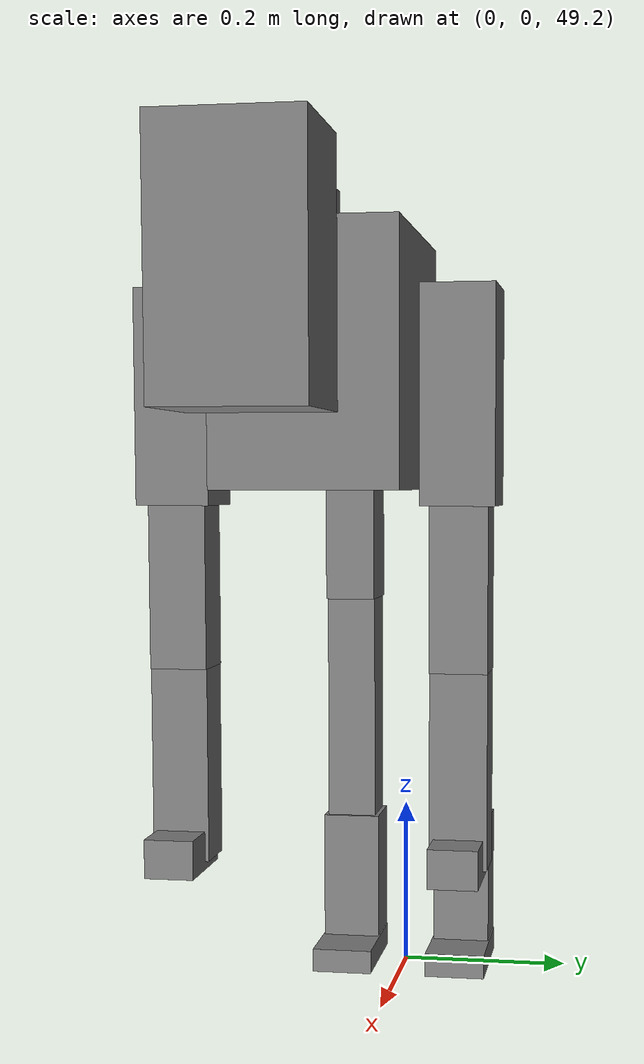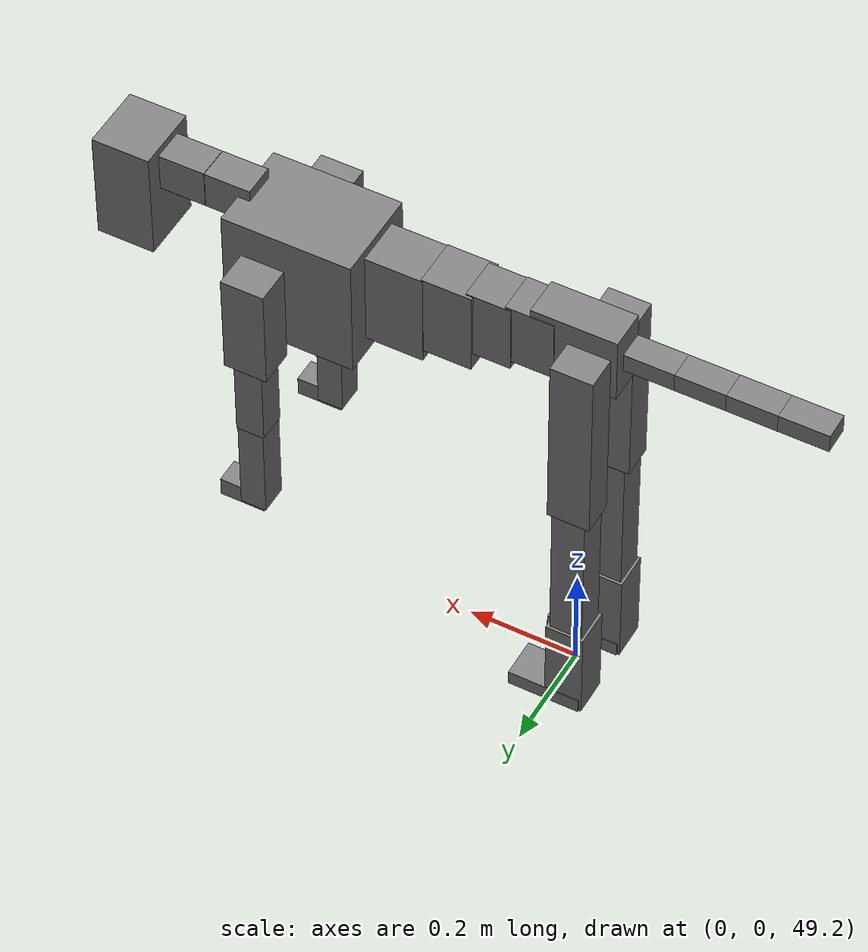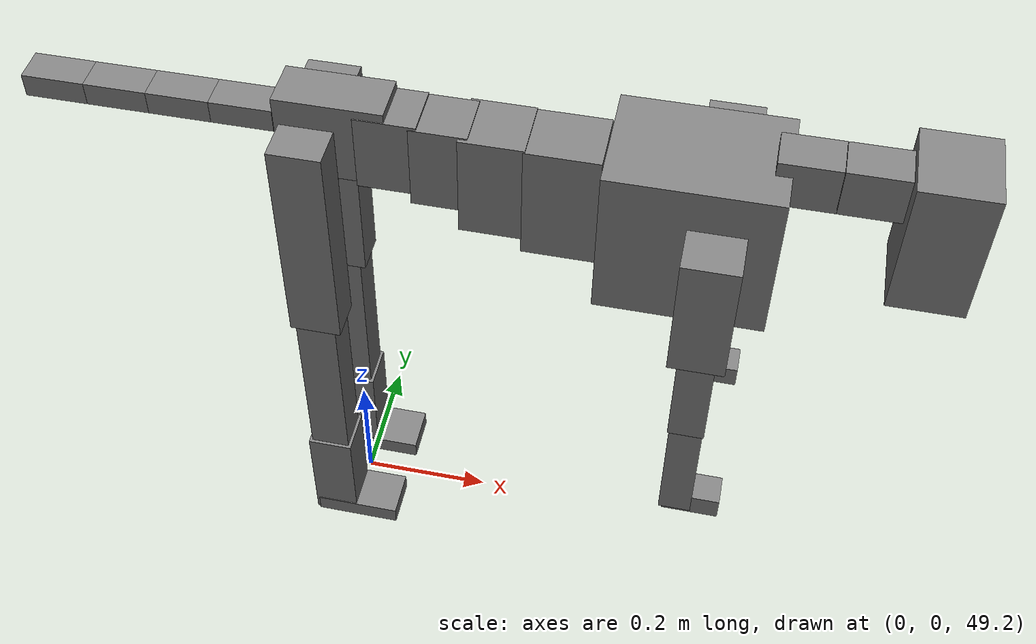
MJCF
<mujoco model="dog">

    <default>
        <joint armature="0.02" stiffness="1" damping="0.2" limited="true"/>
        <geom condim="3" friction="1 0.05 0.05" margin="0.01"/>
        <motor ctrllimited="true" ctrlrange="-1.0 1.0" forcelimited="true" gear="50"/>
    </default>

    <compiler inertiafromgeom="true" angle="radian"/>

    <option timestep="0.016" iterations="50" tolerance="1e-10" solver="Newton" jacobian="dense" cone="pyramidal"/>

    <size nconmax="20000" njmax="60000" nstack="5000000"/>
    <visual>
        <map force="0.1" zfar="30"/>
        <rgba haze="0.15 0.25 0.35 1"/>
        <quality shadowsize="2048"/>
        <global offwidth="800" offheight="800"/>
    </visual>

    <asset>
        <texture type="skybox" builtin="gradient" rgb1="0.3 0.5 0.7" rgb2="0 0 0" width="512" height="512"/>
        <texture name="texplane" type="2d" builtin="checker" rgb1=".2 .3 .4" rgb2=".1 0.15 0.2" width="512" height="512"
                 mark="cross" markrgb=".8 .8 .8"/>
        <texture name="texgeom" type="cube" builtin="flat" mark="cross" width="127" height="1278" rgb1="0.8 0.6 0.4"
                 rgb2="0.8 0.6 0.4" markrgb="1 1 1" random="0.01"/>

        <material name="matplane" reflectance="0.3" texture="texplane" texrepeat="1 1" texuniform="true"/>
        <material name="matgeom" texture="texgeom" texuniform="true" rgba="0.8 0.6 .4 1"/>
    </asset>

    <worldbody>
        <geom name="floor" pos="0 0 0" size="0 0 .25" type="plane" material="matplane" condim="3"/>

        <light directional="false" diffuse=".2 .2 .2" specular="0 0 0" pos="0 0 5" dir="0 0 -1" castshadow="false"/>
        <light mode="targetbodycom" target="torso" directional="false" diffuse=".8 .8 .8" specular="0.3 0.3 0.3"
               pos="0 0 4.0" dir="0 0 -1"/>

        <body name="root" pos="0 0 50">
            <freejoint name="root_1"/>
            <geom type="box" pos="0 0 -0.02" size="0.0774  0.0358  0.063" density="2030"/>

            <body name="spine1" pos="0.054 0 0">
                <joint name="spine1_y" axis="0 1 0" range="0 0.7" limited="true"/>
                <geom type="box" pos="0.02375 0 -0.03" size="0.04375  0.0375  0.05985" density="2030"/>

                <body name="spine2" pos="0.0612 0 0">
                    <joint name="spine2_y" axis="0 1 0" range="-0.15 0.15" limited="true"/>
                    <geom type="box" pos="0.03555  0  -0.04" size="0.04055  0.039  0.06615" density="2030"/>

                    <body name="spine3" pos="0.0730 0 0">
                        <joint name="spine3_y" axis="0 1 0" range="-0.15 0.15" limited="true"/>
                        <geom type="box" pos="0.03555  0  -0.057" size="0.04555  0.0445  0.081" density="2030"/>

                        <body name="spine4" pos="0.0780 0 0">
                            <joint name="spine4_y" axis="0 1 0" range="-0.15 0.15" limited="true"/>
                            <geom type="box" pos="0.05265  0  -0.07" size="0.05265  0.045  0.09135" density="2030"/>

                            <body name="torso" pos="0.1082 0 0">
                                <joint name="torso_y" axis="0 1 0" range="-0.15 0.15" limited="true"/>
                                <geom type="box" pos="0.11925  0  -0.085" size="0.11925  0.085  0.11745"
                                      density="2030"/>

                                <body name="neck1" pos="0.2160  0   0.0180">
                                    <joint name="neck1_y" axis="0 1 0" range="-1.2  -1" limited="true"/>
                                    <geom type="box" pos="0.0423  0  0" size="0.0423  0.03  0.036" density="2325"/>

                                    <body name="neck2" pos="0.0853  0  0">
                                        <joint name="neck2_y" axis="0 1 0" range="0.1  0" limited="true"/>
                                        <geom type="box" pos="0.0423  0  0" size="0.0423  0.03  0.036" density="2325"/>

                                        <body name="head" pos="0.0853  0  0">
                                            <joint name="head_y" axis="0 1 0" range="-0.3  -0.2" limited="true"/>
                                            <geom type="box" pos="0.0531  0  -0.055" size="0.0531  0.06  0.1044"
                                                  density="4030"/>

                                        </body>
                                    </body>
                                </body>

                                <body name="front_shoulder" pos="0.156  0   -0.0480">
                                    <joint name="front_shoulder_y" axis="0 1 0" range="-1 1.5" limited="true"/>
                                    <geom type="box" pos="0 0.13 -0.0710" size="0.0394  0.0337  0.0977" density="1158"/>
                                    <geom type="box" pos="0 -0.13 -0.0710" size="0.0394  0.0337  0.0977"
                                          density="1158"/>

                                    <body name="front_elbow" pos="0  0  -0.1420">
                                        <joint name="front_elbow_y" axis="0 1 0" range="-2 0" limited="true"/>
                                        <geom type="box" pos="0 0.13 -0.0888" size="0.0259  0.0265  0.0888"
                                              density="1081"/>
                                        <geom type="box" pos="0 -0.13 -0.0888" size="0.0259  0.0265  0.0888"
                                              density="1081"/>

                                        <body name="front_wrist" pos="0  0  -0.1775">
                                            <joint name="front_wrist_y" axis="0 1 0" range="-0.2 0" limited="true"/>
                                            <geom type="box" pos="0 0.13 -0.0838" size="0.0238  0.0264  0.0970"
                                                  density="1664"/>
                                            <geom type="box" pos="0 -0.13 -0.0838" size="0.0238  0.0264  0.0970"
                                                  density="1664"/>

                                            <body name="front_finger_end" pos="0  0  -0.1676">
                                                <joint name="front_finger_y" axis="0 1 0" range="-0.4 1"
                                                       limited="true"/>
                                                <geom type="box" pos="0.0229  0.13  -0.0030"
                                                      size="0.0420  0.0229  0.0180" density="1515"/>
                                                <geom type="box" pos="0.0229  -0.13  -0.0030"
                                                      size="0.0420  0.0229  0.0180" density="1515"/>

                                            </body>

                                        </body>
                                    </body>
                                </body>

                            </body>
                        </body>
                    </body>
                </body>
            </body>

            <body name="back_hip" pos="-0.03 0 -0.018">
                <joint name="back_hip_y" axis="0 1 0" range="-1.5 0.3" limited="true"/>
                <geom type="box" pos="0 0.07 -0.1507" size="0.0383  0.0301  0.1735" density="1154"/>
                <geom type="box" pos="0 -0.07 -0.1507" size="0.0383  0.0301  0.1735" density="1154"/>

                <body name="back_knee" pos="0  0  -0.3014">
                    <joint name="back_knee_y" axis="0 1 0" range="0 2.8" limited="true"/>
                    <geom type="box" pos="0 0.07 -0.1550" size="0.0300  0.0296  0.1705" density="1227"/>
                    <geom type="box" pos="0 -0.07 -0.1550" size="0.0300  0.0296  0.1705" density="1227"/>

                    <body name="back_ankle" pos="0  0  -0.3099">
                        <joint name="back_ankle_y" axis="0 1 0" range="-2.2 0" limited="true"/>
                        <geom type="box" pos="0 0.07 -0.0794" size="0.0346  0.0346  0.0907" density="1284"/>
                        <geom type="box" pos="0 -0.07 -0.0794" size="0.0346  0.0346  0.0907" density="1284"/>

                        <body name="back_toe_end" pos="0  0  -0.1588">
                            <joint name="back_toe_y" axis="0 1 0" range="-0.4 1" limited="true"/>
                            <geom type="box" pos="0.0362  0.07  0.0009" size="0.0664  0.0362  0.0141" density="1515"/>
                            <geom type="box" pos="0.0362  -0.07  0.0009" size="0.0664  0.0362  0.0141" density="1515"/>

                        </body>
                    </body>
                </body>
            </body>

            <body name="tail1" pos="-0.074 0 -0.006">
                <joint name="tail1_y" axis="0 1 0" range="-0.2 0.2" limited="true"/>
                <geom type="box" pos="-0.0536  0  0" size="0.045  0.025  0.0175" density="1587"/>

                <body name="tail2" pos="-0.09 0 0">
                    <joint name="tail2_y" axis="0 1 0" range="-0.2 0.2" limited="true"/>
                    <geom type="box" pos="-0.0536  0  0" size="0.045  0.025  0.0175" density="1587"/>

                    <body name="tail3" pos="-0.09 0 0">
                        <joint name="tail3_y" axis="0 1 0" range="-0.2 0.2" limited="true"/>
                        <geom type="box" pos="-0.0536  0  0" size="0.045  0.025  0.0175" density="1587"/>

                        <body name="tail4" pos="-0.09 0 0">
                            <joint name="tail4_y" axis="0 1 0" range="-0.2 0.2" limited="true"/>
                            <geom type="box" pos="-0.0536  0  0" size="0.045  0.025  0.0175" density="1587"/>

                        </body>
                    </body>
                </body>
            </body>
        </body>
    </worldbody>

    <actuator>
        <motor joint="spine1_y" forcerange="-150 150     "/>
        <motor joint="spine2_y" forcerange="-150 150     "/>
        <motor joint="spine3_y" forcerange="-150 150     "/>
        <motor joint="spine4_y" forcerange="-150 150     "/>
        <motor joint="torso_y" forcerange="-150 150     "/>
        <motor joint="neck1_y" forcerange="-100 100       "/>
        <motor joint="neck2_y" forcerange="-100 100       "/>
        <motor joint="head_y" forcerange="-150 150       "/>
        <motor joint="front_shoulder_y" forcerange="-183.80 140.76"/>
        <motor joint="front_elbow_y" forcerange="-130.08 162.34"/>
        <motor joint="front_wrist_y" forcerange="-97.88 113.43"/>
        <motor joint="front_finger_y" forcerange="-62.08 20.08"/>
        <motor joint="back_hip_y" forcerange="-362.93 237.83"/>
        <motor joint="back_knee_y" forcerange="-280.66 349.37"/>
        <motor joint="back_angle_y" forcerange="-226.46 227.10"/>
        <motor joint="back_toe_y" forcerange="-124.35 85.36"/>
        <motor joint="tail1_y" forcerange="-50 50     "/>
        <motor joint="tail2_y" forcerange="-50 50     "/>
        <motor joint="tail3_y" forcerange="-50 50     "/>
        <motor joint="tail4_y" forcerange="-50 50     "/>
    </actuator>
</mujoco>
